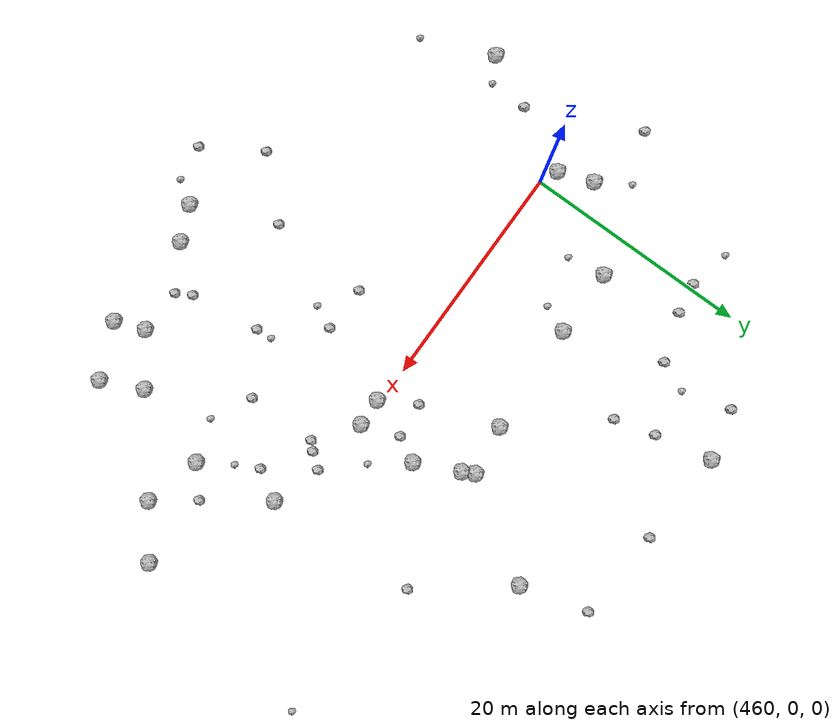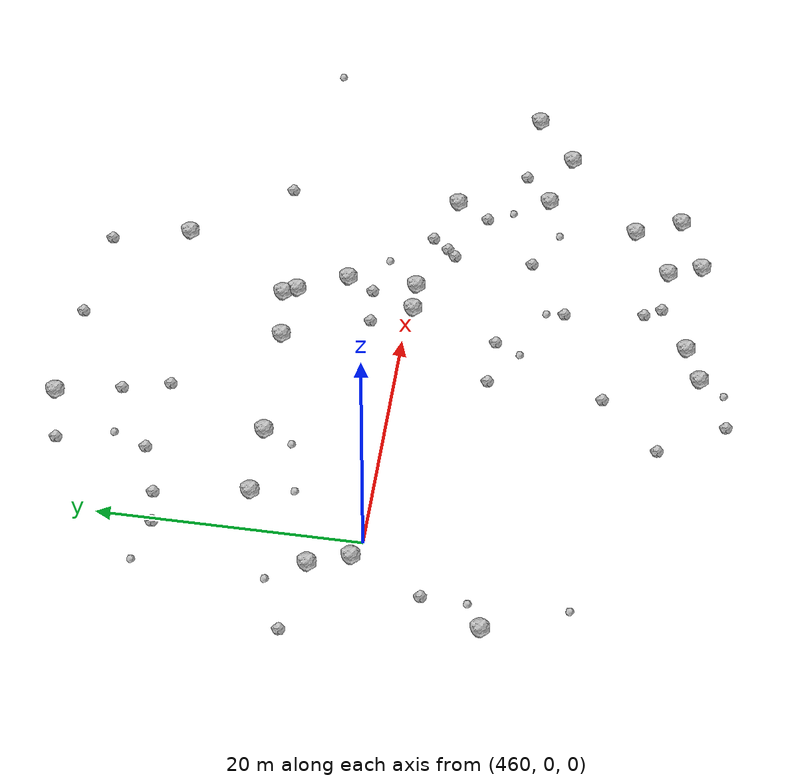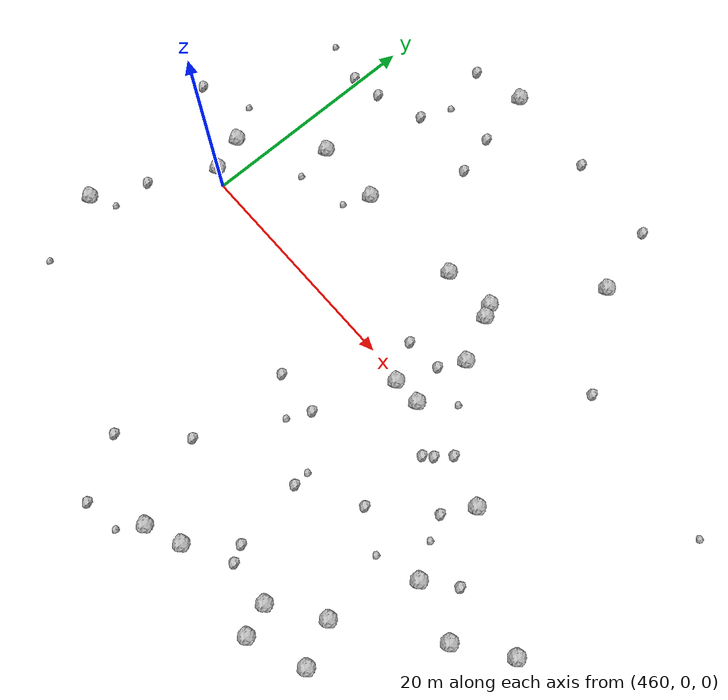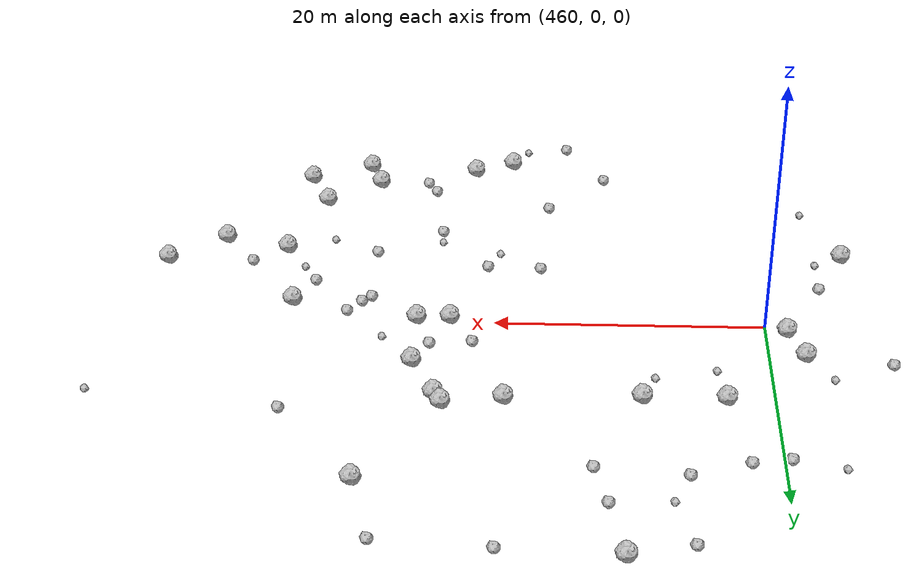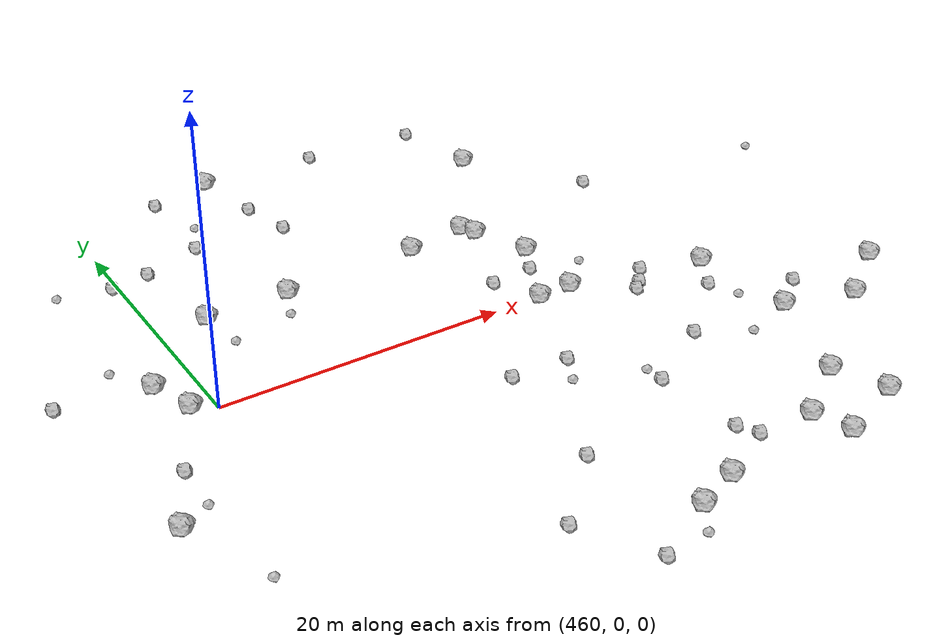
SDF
<sdf version="1.6">
 <world name="default">
  <include><uri>model://sun</uri></include>
  <model name="rock1_12_4">
   <include><uri>model://rock1</uri><pose>485.83493443055903 5.169406451006985 0.5 0 0 0</pose></include>
  </model>
  <model name="rock1_12_5">
   <include><uri>model://rock1</uri><pose>458.5098806984185 0.6811208097753152 0.5 0 0 0</pose></include>
  </model>
  <model name="rock1_12_6">
   <include><uri>model://rock1</uri><pose>483.5088194946198 10.014998196095021 0.5 0 0 0</pose></include>
  </model>
  <model name="rock1_12_7">
   <include><uri>model://rock1</uri><pose>485.7899948681933 -0.2500260071457632 0.5 0 0 0</pose></include>
  </model>
  <model name="rock1_12_8">
   <include><uri>model://rock1</uri><pose>488.95719981663416 18.46983360310881 0.5 0 0 0</pose></include>
  </model>
  <model name="rock1_12_9">
   <include><uri>model://rock1</uri><pose>505.59495474760485 -7.860282774117575 0.5 0 0 0</pose></include>
  </model>
  <model name="rock1_12_10">
   <include><uri>model://rock1</uri><pose>501.460098453549 -10.985314123627774 0.5 0 0 0</pose></include>
  </model>
  <model name="rock1_12_11">
   <include><uri>model://rock1</uri><pose>489.95799225592765 -19.799706138154708 0.5 0 0 0</pose></include>
  </model>
  <model name="rock1_12_12">
   <include><uri>model://rock1</uri><pose>483.3226664392364 -0.33815258823254624 0.5 0 0 0</pose></include>
  </model>
  <model name="rock1_12_13">
   <include><uri>model://rock1</uri><pose>463.44937630421526 9.028312097874327 0.5 0 0 0</pose></include>
  </model>
  <model name="rock1_12_14">
   <include><uri>model://rock1</uri><pose>479.13107324940734 -23.0931692093595 0.5 0 0 0</pose></include>
  </model>
  <model name="rock1_12_15">
   <include><uri>model://rock1</uri><pose>484.0607730354275 8.976346846880126 0.5 0 0 0</pose></include>
  </model>
  <model name="rock1_12_16">
   <include><uri>model://rock1</uri><pose>494.07930359891674 -16.842193043561608 0.5 0 0 0</pose></include>
  </model>
  <model name="rock1_12_17">
   <include><uri>model://rock1</uri><pose>496.4870050086013 -9.636980302046105 0.5 0 0 0</pose></include>
  </model>
  <model name="rock1_12_18">
   <include><uri>model://rock1</uri><pose>457.4230302269744 3.742964683701807 0.5 0 0 0</pose></include>
  </model>
  <model name="rock1_12_19">
   <include><uri>model://rock1</uri><pose>453.39997002866113 -9.446134888495287 0.5 0 0 0</pose></include>
  </model>
  <model name="rock1_12_20">
   <include><uri>model://rock1</uri><pose>479.12122026795043 9.376688553794217 0.5 0 0 0</pose></include>
  </model>
  <model name="rock1_12_21">
   <include><uri>model://rock1</uri><pose>490.9331393642191 -22.374252266264985 0.5 0 0 0</pose></include>
  </model>
  <model name="rock1_12_22">
   <include><uri>model://rock1</uri><pose>482.17273638824906 -21.83635988583783 0.5 0 0 0</pose></include>
  </model>
  <model name="rock1_12_23">
   <include><uri>model://rock1</uri><pose>495.2684085861271 -2.362314505649298 0.5 0 0 0</pose></include>
  </model>
  <model name="rock1_12_24">
   <include><uri>model://rock1</uri><pose>469.37667298957047 9.016553169652866 0.5 0 0 0</pose></include>
  </model>
  <model name="rock1_12_25">
   <include><uri>model://rock1</uri><pose>470.9315101148692 25.475870770560725 0.5 0 0 0</pose></include>
  </model>
  <model name="rock1_12_26">
   <include><uri>model://rock1</uri><pose>495.6805366456916 -20.38726650937825 0.5 0 0 0</pose></include>
  </model>
  <model name="rock2_12_0">
   <include><uri>model://rock2</uri><pose>489.3186628819029 -2.875159990905832 0.3 0 0 0</pose></include>
  </model>
  <model name="rock2_12_1">
   <include><uri>model://rock2</uri><pose>471.9449342559392 20.488087487648002 0.3 0 0 0</pose></include>
  </model>
  <model name="rock2_12_2">
   <include><uri>model://rock2</uri><pose>476.054214149379 -15.943909068116074 0.3 0 0 0</pose></include>
  </model>
  <model name="rock2_12_3">
   <include><uri>model://rock2</uri><pose>484.65209476592577 3.0417923731487875 0.3 0 0 0</pose></include>
  </model>
  <model name="rock2_12_4">
   <include><uri>model://rock2</uri><pose>480.69358730507895 -7.197333291664208 0.3 0 0 0</pose></include>
  </model>
  <model name="rock2_12_5">
   <include><uri>model://rock2</uri><pose>487.35516283289485 24.473498389703366 0.3 0 0 0</pose></include>
  </model>
  <model name="rock2_12_6">
   <include><uri>model://rock2</uri><pose>479.27428394757635 25.09165734343417 0.3 0 0 0</pose></include>
  </model>
  <model name="rock2_12_7">
   <include><uri>model://rock2</uri><pose>476.6433460210461 -7.052029378702407 0.3 0 0 0</pose></include>
  </model>
  <model name="rock2_12_8">
   <include><uri>model://rock2</uri><pose>466.45049593510095 17.54221689711197 0.3 0 0 0</pose></include>
  </model>
  <model name="rock2_12_9">
   <include><uri>model://rock2</uri><pose>491.013944222177 -0.9400152639227208 0.3 0 0 0</pose></include>
  </model>
  <model name="rock2_12_10">
   <include><uri>model://rock2</uri><pose>498.93157799733603 -7.554783930160902 0.3 0 0 0</pose></include>
  </model>
  <model name="rock2_12_11">
   <include><uri>model://rock2</uri><pose>489.34911123495567 -9.033986670651608 0.3 0 0 0</pose></include>
  </model>
  <model name="rock2_12_12">
   <include><uri>model://rock2</uri><pose>466.41337969618246 24.4525274936154 0.3 0 0 0</pose></include>
  </model>
  <model name="rock2_12_13">
   <include><uri>model://rock2</uri><pose>462.2680108072393 16.137751901093644 0.3 0 0 0</pose></include>
  </model>
  <model name="rock2_12_14">
   <include><uri>model://rock2</uri><pose>459.5546028592531 15.706105381351492 0.3 0 0 0</pose></include>
  </model>
  <model name="rock2_12_15">
   <include><uri>model://rock2</uri><pose>485.23601619481656 -18.306324104587098 0.3 0 0 0</pose></include>
  </model>
  <model name="rock2_12_16">
   <include><uri>model://rock2</uri><pose>474.6413582444335 -25.462865728418755 0.3 0 0 0</pose></include>
  </model>
  <model name="rock2_12_17">
   <include><uri>model://rock2</uri><pose>494.69889647766604 11.051741666848848 0.3 0 0 0</pose></include>
  </model>
  <model name="rock2_12_18">
   <include><uri>model://rock2</uri><pose>490.0052200271612 -2.2125816203624424 0.3 0 0 0</pose></include>
  </model>
  <model name="rock2_12_19">
   <include><uri>model://rock2</uri><pose>451.24792630790137 4.7748580979211965 0.3 0 0 0</pose></include>
  </model>
  <model name="rock2_12_20">
   <include><uri>model://rock2</uri><pose>484.3953719105102 -12.135700740395883 0.3 0 0 0</pose></include>
  </model>
  <model name="rock2_12_21">
   <include><uri>model://rock2</uri><pose>471.59822972513365 -20.512263530162556 0.3 0 0 0</pose></include>
  </model>
  <model name="rock2_12_22">
   <include><uri>model://rock2</uri><pose>481.537569957337 2.7528707276539492 0.3 0 0 0</pose></include>
  </model>
  <model name="rock2_12_23">
   <include><uri>model://rock2</uri><pose>485.9845283728782 -19.63321786813097 0.3 0 0 0</pose></include>
  </model>
  <model name="rock2_12_24">
   <include><uri>model://rock2</uri><pose>493.759190892103 -4.93640697193365 0.3 0 0 0</pose></include>
  </model>
  <model name="rock2_12_25">
   <include><uri>model://rock2</uri><pose>455.5637271506223 -4.836659338986074 0.3 0 0 0</pose></include>
  </model>
  <model name="rock2_12_26">
   <include><uri>model://rock2</uri><pose>472.8904586826652 16.87690495996759 0.3 0 0 0</pose></include>
  </model>
  <model name="rock3_12_0">
   <include><uri>model://rock3</uri><pose>477.8153582175361 -25.104541136722844 0.2 0 0 0</pose></include>
  </model>
  <model name="rock3_12_1">
   <include><uri>model://rock3</uri><pose>492.80601382128583 -10.891149014547842 0.2 0 0 0</pose></include>
  </model>
  <model name="rock3_12_2">
   <include><uri>model://rock3</uri><pose>508.57457431855664 9.128889179926176 0.2 0 0 0</pose></include>
  </model>
  <model name="rock3_12_3">
   <include><uri>model://rock3</uri><pose>455.8744507257339 -15.65761041207718 0.2 0 0 0</pose></include>
  </model>
  <model name="rock3_12_4">
   <include><uri>model://rock3</uri><pose>479.7557369613615 -9.209114074930575 0.2 0 0 0</pose></include>
  </model>
  <model name="rock3_12_5">
   <include><uri>model://rock3</uri><pose>455.9272730660641 16.491517452709537 0.2 0 0 0</pose></include>
  </model>
  <model name="rock3_12_6">
   <include><uri>model://rock3</uri><pose>484.30659045270556 -10.766901026567282 0.2 0 0 0</pose></include>
  </model>
  <model name="rock3_12_7">
   <include><uri>model://rock3</uri><pose>467.5759275404324 20.15954385261373 0.2 0 0 0</pose></include>
  </model>
  <model name="rock3_12_8">
   <include><uri>model://rock3</uri><pose>455.5896114520006 6.543161612825706 0.2 0 0 0</pose></include>
  </model>
  <model name="rock3_12_9">
   <include><uri>model://rock3</uri><pose>463.8915345785436 5.72803157206458 0.2 0 0 0</pose></include>
  </model>
  <model name="rock3_12_10">
   <include><uri>model://rock3</uri><pose>455.466881510364 -8.2942195465473 0.2 0 0 0</pose></include>
  </model>
  <model name="rock3_12_11">
   <include><uri>model://rock3</uri><pose>488.1437069127573 2.1466094716838384 0.2 0 0 0</pose></include>
  </model>
  <model name="rock3_12_12">
   <include><uri>model://rock3</uri><pose>468.332822852279 6.713092250292462 0.2 0 0 0</pose></include>
  </model>
  <model name="rock3_12_13">
   <include><uri>model://rock3</uri><pose>494.7642697381361 -6.947998122117596 0.2 0 0 0</pose></include>
  </model>
 </world>
</sdf>
